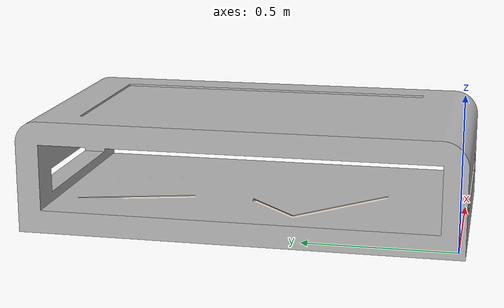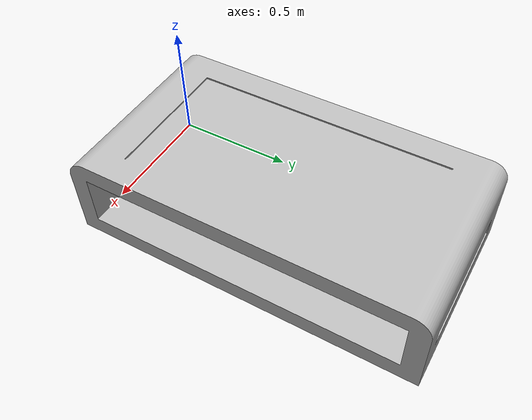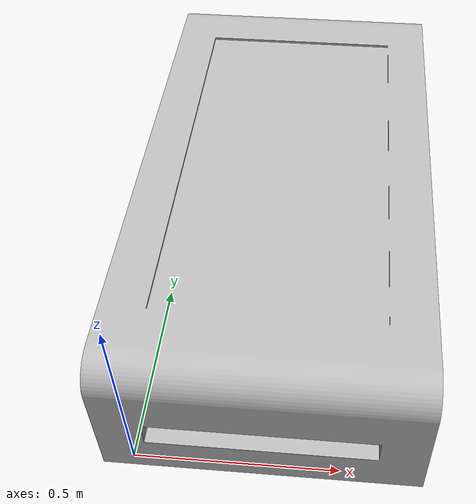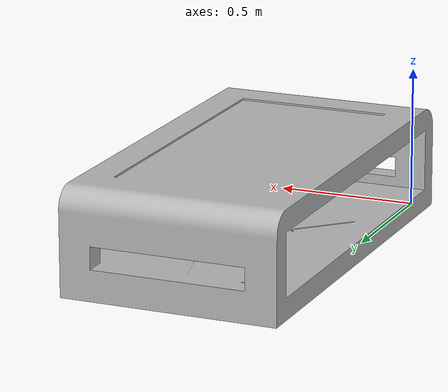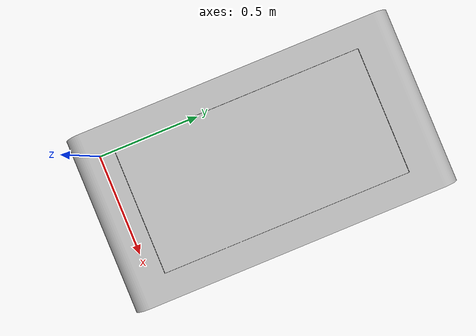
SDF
<sdf version="1.4">
  <model name="coffee table">
    <static>1</static>
    <link name="link">
      <collision name="colision">
        <pose>0 0 0 0 0 0</pose>
        <geometry>
          <mesh>
            <uri>model://coffee_table/meshes/coffee_table.min.dae</uri>
            <scale> 0.1 0.1 0.1 </scale>
          </mesh>
        </geometry>
        <surface>
          <bounce />
          <friction>
            <ode />
          </friction>
          <contact>
            <ode />
          </contact>
        </surface>
      </collision>

      <visual name="visual">
        <pose>0 0 0 0 0 0</pose>
        <geometry>
          <mesh>
            <uri>model://coffee_table/meshes/coffee_table.dae</uri>
            <scale> 0.1 0.1 0.1 </scale>
          </mesh>
        </geometry>
      </visual>

      <velocity_decay>
        <linear>0.000000</linear>
        <angular>0.000000</angular>
      </velocity_decay>
      <self_collide>0</self_collide>
      <kinematic>0</kinematic>
      <gravity>1</gravity>
    </link>
  </model>
</sdf>
